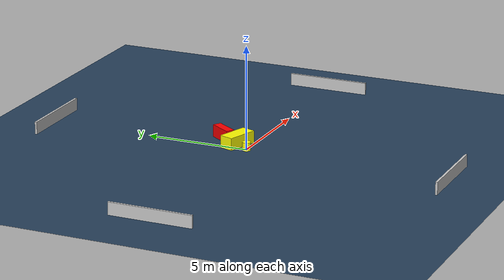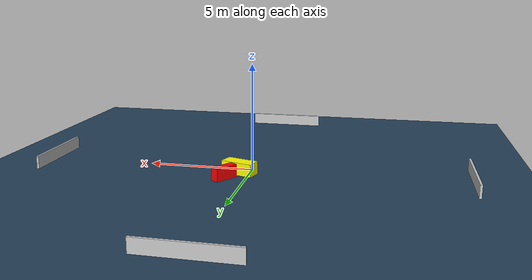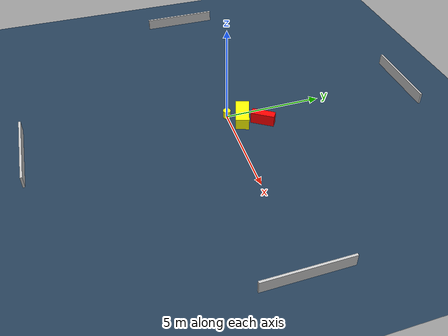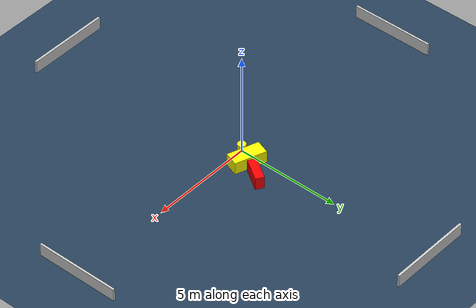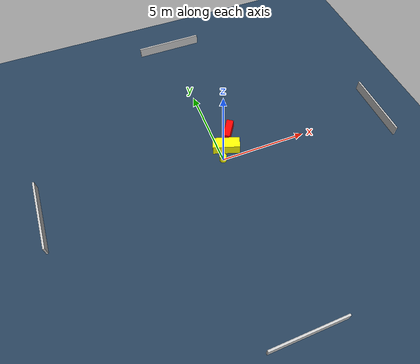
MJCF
<?xml version="1.0" ?>
<mujoco model="generated_environment">
  <option timestep="0.01" integrator="RK4" cone="elliptic"/>
  <default>
    <geom density="1"/>
  </default>
  <asset>
    <texture builtin="gradient" height="3072" name="skybox" rgb1="0.3 0.5 0.7" rgb2="0 0 0" type="skybox" width="512"/>
    <texture builtin="checker" height="300" name="groundplane" rgb1="0.2 0.3 0.4" rgb2="0.1 0.2 0.3" type="2d" width="300"/>
    <material name="groundplane" reflectance="0.2" texrepeat="5 5" texture="groundplane"/>
  </asset>
  <worldbody>
    <light dir="0 0 -1" directional="true" pos="0 0 1.5"/>
    <geom condim="3" friction="0.5 0.005 0.001" material="groundplane" name="floor" pos="0 0 0" size="0 0 0.05" type="plane"/>
    <body name="walls">
      <geom name="wall_1" condim="4" pos="-10.0 0.0 0.3" rgba="0.800000011920929 0.800000011920929 0.800000011920929 1.0" size="0.05 2.0 0.3" type="box"/>
      <geom name="wall_2" condim="4" pos="10.0 0.0 0.3" rgba="0.800000011920929 0.800000011920929 0.800000011920929 1.0" size="0.05 2.0 0.3" type="box"/>
      <geom name="wall_3" condim="4" pos="0.0 -10.0 0.3" rgba="0.800000011920929 0.800000011920929 0.800000011920929 1.0" size="2.0 0.05 0.3" type="box"/>
      <geom name="wall_4" condim="4" pos="0.0 10.0 0.3" rgba="0.800000011920929 0.800000011920929 0.800000011920929 1.0" size="2.0 0.05 0.3" type="box"/>
    </body>
    <body name="robot">
      <joint name="joint_x" type="slide" pos="0 0 0" axis="1 0 0"/>
      <joint name="joint_y" type="slide" pos="0 0 0" axis="0 1 0"/>
      <geom name="robot" type="cylinder" pos="0.0 0.0 0.2" size="0.2 0.2 0.0" mass="5.0" friction="1.0 0.005 0.0001" condim="4" rgba="1.0 1.0 0.0 1.0"/>
    </body>
    <body name="obstacle_1_movable">
      <geom name="obstacle_1_movable" condim="4" pos="0.4536749708603928 0.6737227097803382 0.3" euler="0 0 161.18325924143465" friction="0.0 0.005 0.001" rgba="1.0 1.0 0.0 1.0" size="0.7680728863076816 0.34140213220101834 0.3" type="box" mass="0.1"/>
      <joint type="free"/>
    </body>
    <body name="obstacle_2_static">
      <geom name="obstacle_2_static" condim="4" pos="0.9519373894894886 1.6042072273157577 0.3" euler="0 0 146.63164122236208" friction="0.0 0.005 0.001" rgba="1.0 0.0 0.0 1.0" size="0.2041324118878649 0.5902237294861925 0.3" type="box"/>
    </body>
  </worldbody>
  <actuator>
    <motor name="actuator_x" joint="joint_x" gear="1" ctrlrange="-1 1"/>
    <motor name="actuator_y" joint="joint_y" gear="1" ctrlrange="-1 1"/>
  </actuator>
</mujoco>
